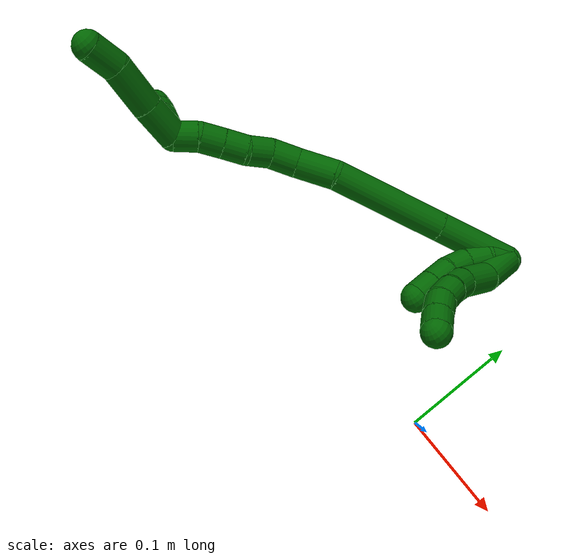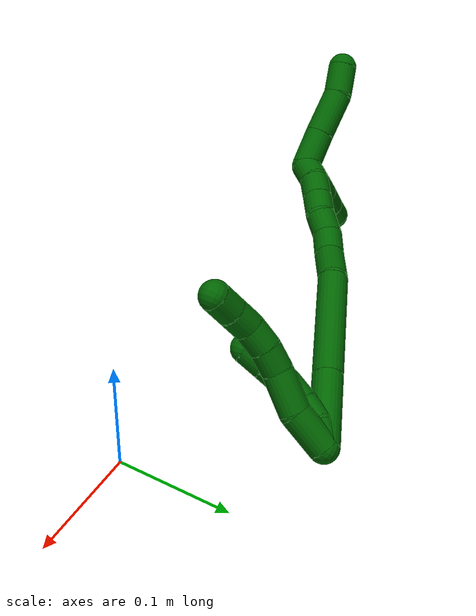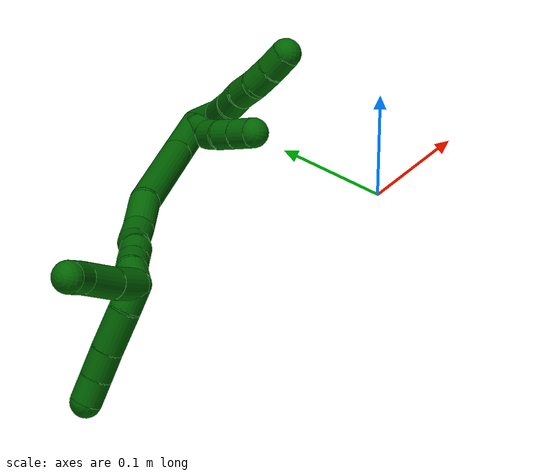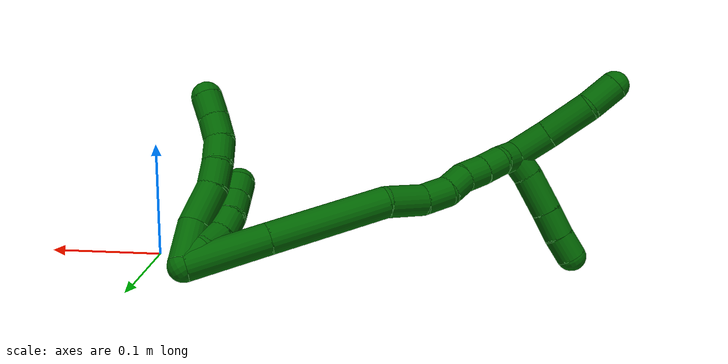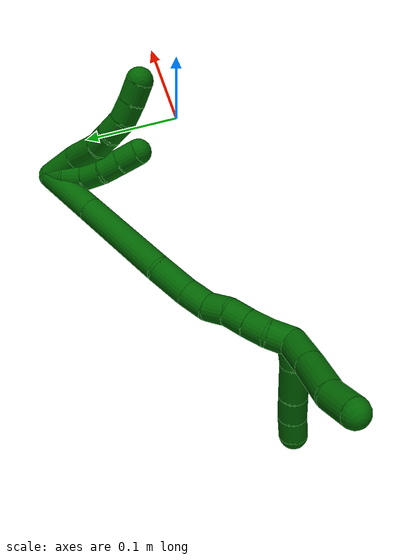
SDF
<sdf version="1.7">
 <world name="default">
  <model name="photoneo_s_sensor">
   <static>1</static>
   <pose>0 0 2 1.57079 1.57079 3.14159</pose>
   <link name="link">
    <inertial><mass>0.1</mass></inertial>
    <sensor name="sensor" type="depth">
     <update_rate>30</update_rate>
     <camera>
      <horizontal_fov>1.22</horizontal_fov>
      <image><width>1920</width><height>1200</height><format>B8G8R8</format></image>
      <clip><near>0.1</near><far>4</far></clip>
      <depth_camera><output>points</output></depth_camera>
     </camera>
     <plugin name="camera_plugin" filename="libgazebo_ros_depth_camera.so">
      <baseline>0.2</baseline>
      <alwaysOn>1</alwaysOn>
      <updateRate>0.0</updateRate>
      <cameraName>camera_ir</cameraName>
      <imageTopicName>/camera/color/image_raw</imageTopicName>
      <cameraInfoTopicName>/camera/color/camera_info</cameraInfoTopicName>
      <depthImageTopicName>/camera/depth/image_raw</depthImageTopicName>
      <depthImageCameraInfoTopicName>/camera/depth/camera_info</depthImageCameraInfoTopicName>
      <pointCloudTopicName>/camera/depth/points</pointCloudTopicName>
      <frameName>fr_optical</frameName>
      <pointCloudCutoff>0.1</pointCloudCutoff>
      <pointCloudCutoffMax>2.0</pointCloudCutoffMax>
      <distortionK1>0</distortionK1>
      <distortionK2>0</distortionK2>
      <distortionK3>0</distortionK3>
      <distortionT1>0</distortionT1>
      <distortionT2>0</distortionT2>
      <CxPrime>0</CxPrime>
      <Cx>0</Cx>
      <Cy>0</Cy>
      <focalLength>0</focalLength>
      <hackBaseline>0</hackBaseline>
     </plugin>
    </sensor>
   </link>
  </model>
  <model name="bin">
   <static>1</static>
   <link name="bottom">
    <collision name="collision-bottom">
     <pose>0 0 -0.01 0 -0 0</pose>
     <geometry><box><size>0.8 0.6 0.02</size></box></geometry>
     <surface>
      <friction><ode><mu>100</mu><mu2>100</mu2></ode></friction>
      <contact><collide_bitmask>65535</collide_bitmask></contact>
     </surface>
    </collision>
   </link>
   <link name="west_wall">
    <collision name="collision-west_wall">
     <pose>-0.41 0 0.1 0 -0 0</pose>
     <geometry><box><size>0.02 0.6 0.2</size></box></geometry>
     <surface>
      <friction><ode><mu>100</mu><mu2>100</mu2></ode></friction>
      <contact><collide_bitmask>65535</collide_bitmask></contact>
     </surface>
    </collision>
   </link>
   <link name="east_wall">
    <collision name="collision-east_wall">
     <pose>0.41 0 0.1 0 -0 0</pose>
     <geometry><box><size>0.02 0.6 0.2</size></box></geometry>
     <surface>
      <friction><ode><mu>100</mu><mu2>100</mu2></ode></friction>
      <contact><collide_bitmask>65535</collide_bitmask></contact>
     </surface>
    </collision>
   </link>
   <link name="south_wall">
    <collision name="collision-south_wall">
     <pose>0 -0.31 0.1 0 -0 0</pose>
     <geometry><box><size>0.8 0.02 0.2</size></box></geometry>
     <surface>
      <friction><ode><mu>100</mu><mu2>100</mu2></ode></friction>
      <contact><collide_bitmask>65535</collide_bitmask></contact>
     </surface>
    </collision>
   </link>
   <link name="north_wall">
    <collision name="collision-north_wall">
     <pose>0 0.31 0.1 0 -0 0</pose>
     <geometry><box><size>0.8 0.02 0.2</size></box></geometry>
     <surface>
      <friction><ode><mu>100</mu><mu2>100</mu2></ode></friction>
      <contact><collide_bitmask>65535</collide_bitmask></contact>
     </surface>
    </collision>
   </link>
  </model>
  <model name="6">
   <static>0</static>
   <link name="6">
    <collision name="collision-cylinder-e_1_2_8">
     <pose>0.007121 -0.014197 0.007047 1.11003 0.422234 0.264208</pose>
     <geometry><cylinder><radius>0.0125</radius><length>0.034752</length></cylinder></geometry>
     <surface>
      <friction><ode><mu>1.16</mu><mu2>1.16</mu2><slip1>0</slip1><slip2>0</slip2></ode></friction>
      <contact><ode><kp>1e+06</kp><kd>1</kd><max_vel>0</max_vel><min_depth>0.001</min_depth></ode></contact>
     </surface>
    </collision>
    <visual name="visual-cylinder-e_1_2_8">
     <pose>0.007121 -0.014197 0.007047 1.11003 0.422234 0.264208</pose>
     <geometry><cylinder><radius>0.0125</radius><length>0.034752</length></cylinder></geometry>
     <material><ambient>0 0.392157 0.003922 1</ambient></material>
    </visual>
    <collision name="collision-cylinder-e_2_8_9">
     <pose>0.020119 -0.039723 0.025184 0.796132 0.355042 0.150604</pose>
     <geometry><cylinder><radius>0.0125</radius><length>0.033815</length></cylinder></geometry>
     <surface>
      <friction><ode><mu>1.16</mu><mu2>1.16</mu2><slip1>0</slip1><slip2>0</slip2></ode></friction>
      <contact><ode><kp>1e+06</kp><kd>1</kd><max_vel>0</max_vel><min_depth>0.001</min_depth></ode></contact>
     </surface>
    </collision>
    <visual name="visual-cylinder-e_2_8_9">
     <pose>0.020119 -0.039723 0.025184 0.796132 0.355042 0.150604</pose>
     <geometry><cylinder><radius>0.0125</radius><length>0.033815</length></cylinder></geometry>
     <material><ambient>0 0.392157 0.003922 1</ambient></material>
    </visual>
    <collision name="collision-cylinder-e_3_9_10">
     <pose>0.031593 -0.057806 0.041641 0.899098 0.57546 0.283666</pose>
     <geometry><cylinder><radius>0.0125</radius><length>0.020568</length></cylinder></geometry>
     <surface>
      <friction><ode><mu>1.16</mu><mu2>1.16</mu2><slip1>0</slip1><slip2>0</slip2></ode></friction>
      <contact><ode><kp>1e+06</kp><kd>1</kd><max_vel>0</max_vel><min_depth>0.001</min_depth></ode></contact>
     </surface>
    </collision>
    <visual name="visual-cylinder-e_3_9_10">
     <pose>0.031593 -0.057806 0.041641 0.899098 0.57546 0.283666</pose>
     <geometry><cylinder><radius>0.0125</radius><length>0.020568</length></cylinder></geometry>
     <material><ambient>0 0.392157 0.003922 1</ambient></material>
    </visual>
    <collision name="collision-cylinder-e_4_10_11">
     <pose>0.042756 -0.072206 0.050899 1.10034 0.575593 0.359203</pose>
     <geometry><cylinder><radius>0.0125</radius><length>0.020452</length></cylinder></geometry>
     <surface>
      <friction><ode><mu>1.16</mu><mu2>1.16</mu2><slip1>0</slip1><slip2>0</slip2></ode></friction>
      <contact><ode><kp>1e+06</kp><kd>1</kd><max_vel>0</max_vel><min_depth>0.001</min_depth></ode></contact>
     </surface>
    </collision>
    <visual name="visual-cylinder-e_4_10_11">
     <pose>0.042756 -0.072206 0.050899 1.10034 0.575593 0.359203</pose>
     <geometry><cylinder><radius>0.0125</radius><length>0.020452</length></cylinder></geometry>
     <material><ambient>0 0.392157 0.003922 1</ambient></material>
    </visual>
    <collision name="collision-cylinder-e_5_11_12">
     <pose>0.05574 -0.086399 0.05628 1.3467 0.835111 0.6803</pose>
     <geometry><cylinder><radius>0.0125</radius><length>0.020012</length></cylinder></geometry>
     <surface>
      <friction><ode><mu>1.16</mu><mu2>1.16</mu2><slip1>0</slip1><slip2>0</slip2></ode></friction>
      <contact><ode><kp>1e+06</kp><kd>1</kd><max_vel>0</max_vel><min_depth>0.001</min_depth></ode></contact>
     </surface>
    </collision>
    <visual name="visual-cylinder-e_5_11_12">
     <pose>0.05574 -0.086399 0.05628 1.3467 0.835111 0.6803</pose>
     <geometry><cylinder><radius>0.0125</radius><length>0.020012</length></cylinder></geometry>
     <material><ambient>0 0.392157 0.003922 1</ambient></material>
    </visual>
    <collision name="collision-cylinder-e_6_12_6">
     <pose>0.071244 -0.09903 0.059062 1.36187 0.915127 0.759225</pose>
     <geometry><cylinder><radius>0.0125</radius><length>0.020402</length></cylinder></geometry>
     <surface>
      <friction><ode><mu>1.16</mu><mu2>1.16</mu2><slip1>0</slip1><slip2>0</slip2></ode></friction>
      <contact><ode><kp>1e+06</kp><kd>1</kd><max_vel>0</max_vel><min_depth>0.001</min_depth></ode></contact>
     </surface>
    </collision>
    <visual name="visual-cylinder-e_6_12_6">
     <pose>0.071244 -0.09903 0.059062 1.36187 0.915127 0.759225</pose>
     <geometry><cylinder><radius>0.0125</radius><length>0.020402</length></cylinder></geometry>
     <material><ambient>0 0.392157 0.003922 1</ambient></material>
    </visual>
    <collision name="collision-cylinder-e_1_2_13">
     <pose>-0.000605 -0.006443 0.007624 0.701597 -0.060577 -0.022173</pose>
     <geometry><cylinder><radius>0.0125</radius><length>0.02</length></cylinder></geometry>
     <surface>
      <friction><ode><mu>1.16</mu><mu2>1.16</mu2><slip1>0</slip1><slip2>0</slip2></ode></friction>
      <contact><ode><kp>1e+06</kp><kd>1</kd><max_vel>0</max_vel><min_depth>0.001</min_depth></ode></contact>
     </surface>
    </collision>
    <visual name="visual-cylinder-e_1_2_13">
     <pose>-0.000605 -0.006443 0.007624 0.701597 -0.060577 -0.022173</pose>
     <geometry><cylinder><radius>0.0125</radius><length>0.02</length></cylinder></geometry>
     <material><ambient>0 0.392157 0.003922 1</ambient></material>
    </visual>
    <collision name="collision-cylinder-e_2_13_14">
     <pose>-0.00224 -0.021259 0.020616 1.00078 -0.103054 -0.056386</pose>
     <geometry><cylinder><radius>0.0125</radius><length>0.02</length></cylinder></geometry>
     <surface>
      <friction><ode><mu>1.16</mu><mu2>1.16</mu2><slip1>0</slip1><slip2>0</slip2></ode></friction>
      <contact><ode><kp>1e+06</kp><kd>1</kd><max_vel>0</max_vel><min_depth>0.001</min_depth></ode></contact>
     </surface>
    </collision>
    <visual name="visual-cylinder-e_2_13_14">
     <pose>-0.00224 -0.021259 0.020616 1.00078 -0.103054 -0.056386</pose>
     <geometry><cylinder><radius>0.0125</radius><length>0.02</length></cylinder></geometry>
     <material><ambient>0 0.392157 0.003922 1</ambient></material>
    </visual>
    <collision name="collision-cylinder-e_3_14_15">
     <pose>-0.001636 -0.038369 0.030569 1.08745 0.163975 0.099265</pose>
     <geometry><cylinder><radius>0.0125</radius><length>0.02</length></cylinder></geometry>
     <surface>
      <friction><ode><mu>1.16</mu><mu2>1.16</mu2><slip1>0</slip1><slip2>0</slip2></ode></friction>
      <contact><ode><kp>1e+06</kp><kd>1</kd><max_vel>0</max_vel><min_depth>0.001</min_depth></ode></contact>
     </surface>
    </collision>
    <visual name="visual-cylinder-e_3_14_15">
     <pose>-0.001636 -0.038369 0.030569 1.08745 0.163975 0.099265</pose>
     <geometry><cylinder><radius>0.0125</radius><length>0.02</length></cylinder></geometry>
     <material><ambient>0 0.392157 0.003922 1</ambient></material>
    </visual>
    <collision name="collision-cylinder-e_4_15_16">
     <pose>0.002418 -0.056368 0.03804 1.2688 0.244622 0.180423</pose>
     <geometry><cylinder><radius>0.0125</radius><length>0.02</length></cylinder></geometry>
     <surface>
      <friction><ode><mu>1.16</mu><mu2>1.16</mu2><slip1>0</slip1><slip2>0</slip2></ode></friction>
      <contact><ode><kp>1e+06</kp><kd>1</kd><max_vel>0</max_vel><min_depth>0.001</min_depth></ode></contact>
     </surface>
    </collision>
    <visual name="visual-cylinder-e_4_15_16">
     <pose>0.002418 -0.056368 0.03804 1.2688 0.244622 0.180423</pose>
     <geometry><cylinder><radius>0.0125</radius><length>0.02</length></cylinder></geometry>
     <material><ambient>0 0.392157 0.003922 1</ambient></material>
    </visual>
    <collision name="collision-cylinder-e_5_16_5">
     <pose>0.007354 -0.074903 0.043704 1.27965 0.25409 0.189566</pose>
     <geometry><cylinder><radius>0.0125</radius><length>0.02</length></cylinder></geometry>
     <surface>
      <friction><ode><mu>1.16</mu><mu2>1.16</mu2><slip1>0</slip1><slip2>0</slip2></ode></friction>
      <contact><ode><kp>1e+06</kp><kd>1</kd><max_vel>0</max_vel><min_depth>0.001</min_depth></ode></contact>
     </surface>
    </collision>
    <visual name="visual-cylinder-e_5_16_5">
     <pose>0.007354 -0.074903 0.043704 1.27965 0.25409 0.189566</pose>
     <geometry><cylinder><radius>0.0125</radius><length>0.02</length></cylinder></geometry>
     <material><ambient>0 0.392157 0.003922 1</ambient></material>
    </visual>
    <collision name="collision-cylinder-e_1_2_17">
     <pose>-0.011535 -0.011513 0.028244 0.387065 -0.361558 -0.071612</pose>
     <geometry><cylinder><radius>0.0125</radius><length>0.065218</length></cylinder></geometry>
     <surface>
      <friction><ode><mu>1.16</mu><mu2>1.16</mu2><slip1>0</slip1><slip2>0</slip2></ode></friction>
      <contact><ode><kp>1e+06</kp><kd>1</kd><max_vel>0</max_vel><min_depth>0.001</min_depth></ode></contact>
     </surface>
    </collision>
    <visual name="visual-cylinder-e_1_2_17">
     <pose>-0.011535 -0.011513 0.028244 0.387065 -0.361558 -0.071612</pose>
     <geometry><cylinder><radius>0.0125</radius><length>0.065218</length></cylinder></geometry>
     <material><ambient>0 0.392157 0.003922 1</ambient></material>
    </visual>
    <collision name="collision-cylinder-e_2_17_18">
     <pose>-0.040387 -0.040174 0.098567 0.386962 -0.364127 -0.072112</pose>
     <geometry><cylinder><radius>0.0125</radius><length>0.097253</length></cylinder></geometry>
     <surface>
      <friction><ode><mu>1.16</mu><mu2>1.16</mu2><slip1>0</slip1><slip2>0</slip2></ode></friction>
      <contact><ode><kp>1e+06</kp><kd>1</kd><max_vel>0</max_vel><min_depth>0.001</min_depth></ode></contact>
     </surface>
    </collision>
    <visual name="visual-cylinder-e_2_17_18">
     <pose>-0.040387 -0.040174 0.098567 0.386962 -0.364127 -0.072112</pose>
     <geometry><cylinder><radius>0.0125</radius><length>0.097253</length></cylinder></geometry>
     <material><ambient>0 0.392157 0.003922 1</ambient></material>
    </visual>
    <collision name="collision-cylinder-e_3_18_19">
     <pose>-0.067384 -0.06465 0.152206 0.565025 -0.615524 -0.184015</pose>
     <geometry><cylinder><radius>0.0125</radius><length>0.033527</length></cylinder></geometry>
     <surface>
      <friction><ode><mu>1.16</mu><mu2>1.16</mu2><slip1>0</slip1><slip2>0</slip2></ode></friction>
      <contact><ode><kp>1e+06</kp><kd>1</kd><max_vel>0</max_vel><min_depth>0.001</min_depth></ode></contact>
     </surface>
    </collision>
    <visual name="visual-cylinder-e_3_18_19">
     <pose>-0.067384 -0.06465 0.152206 0.565025 -0.615524 -0.184015</pose>
     <geometry><cylinder><radius>0.0125</radius><length>0.033527</length></cylinder></geometry>
     <material><ambient>0 0.392157 0.003922 1</ambient></material>
    </visual>
    <collision name="collision-cylinder-e_4_19_20">
     <pose>-0.081318 -0.077376 0.173396 0.510821 -0.367863 -0.097076</pose>
     <geometry><cylinder><radius>0.0125</radius><length>0.023664</length></cylinder></geometry>
     <surface>
      <friction><ode><mu>1.16</mu><mu2>1.16</mu2><slip1>0</slip1><slip2>0</slip2></ode></friction>
      <contact><ode><kp>1e+06</kp><kd>1</kd><max_vel>0</max_vel><min_depth>0.001</min_depth></ode></contact>
     </surface>
    </collision>
    <visual name="visual-cylinder-e_4_19_20">
     <pose>-0.081318 -0.077376 0.173396 0.510821 -0.367863 -0.097076</pose>
     <geometry><cylinder><radius>0.0125</radius><length>0.023664</length></cylinder></geometry>
     <material><ambient>0 0.392157 0.003922 1</ambient></material>
    </visual>
    <collision name="collision-cylinder-e_5_20_21">
     <pose>-0.086481 -0.089421 0.190633 0.71829 -0.089673 -0.033685</pose>
     <geometry><cylinder><radius>0.0125</radius><length>0.020284</length></cylinder></geometry>
     <surface>
      <friction><ode><mu>1.16</mu><mu2>1.16</mu2><slip1>0</slip1><slip2>0</slip2></ode></friction>
      <contact><ode><kp>1e+06</kp><kd>1</kd><max_vel>0</max_vel><min_depth>0.001</min_depth></ode></contact>
     </surface>
    </collision>
    <visual name="visual-cylinder-e_5_20_21">
     <pose>-0.086481 -0.089421 0.190633 0.71829 -0.089673 -0.033685</pose>
     <geometry><cylinder><radius>0.0125</radius><length>0.020284</length></cylinder></geometry>
     <material><ambient>0 0.392157 0.003922 1</ambient></material>
    </visual>
    <collision name="collision-cylinder-e_6_21_22">
     <pose>-0.090663 -0.101176 0.206204 0.570161 -0.333051 -0.098438</pose>
     <geometry><cylinder><radius>0.0125</radius><length>0.020025</length></cylinder></geometry>
     <surface>
      <friction><ode><mu>1.16</mu><mu2>1.16</mu2><slip1>0</slip1><slip2>0</slip2></ode></friction>
      <contact><ode><kp>1e+06</kp><kd>1</kd><max_vel>0</max_vel><min_depth>0.001</min_depth></ode></contact>
     </surface>
    </collision>
    <visual name="visual-cylinder-e_6_21_22">
     <pose>-0.090663 -0.101176 0.206204 0.570161 -0.333051 -0.098438</pose>
     <geometry><cylinder><radius>0.0125</radius><length>0.020025</length></cylinder></geometry>
     <material><ambient>0 0.392157 0.003922 1</ambient></material>
    </visual>
    <collision name="collision-cylinder-e_7_22_23">
     <pose>-0.096421 -0.111597 0.222274 0.580357 -0.250972 -0.075302</pose>
     <geometry><cylinder><radius>0.0125</radius><length>0.02001</length></cylinder></geometry>
     <surface>
      <friction><ode><mu>1.16</mu><mu2>1.16</mu2><slip1>0</slip1><slip2>0</slip2></ode></friction>
      <contact><ode><kp>1e+06</kp><kd>1</kd><max_vel>0</max_vel><min_depth>0.001</min_depth></ode></contact>
     </surface>
    </collision>
    <visual name="visual-cylinder-e_7_22_23">
     <pose>-0.096421 -0.111597 0.222274 0.580357 -0.250972 -0.075302</pose>
     <geometry><cylinder><radius>0.0125</radius><length>0.02001</length></cylinder></geometry>
     <material><ambient>0 0.392157 0.003922 1</ambient></material>
    </visual>
    <collision name="collision-cylinder-e_8_23_1">
     <pose>-0.102705 -0.123952 0.236395 0.863679 -0.389349 -0.181235</pose>
     <geometry><cylinder><radius>0.0125</radius><length>0.020019</length></cylinder></geometry>
     <surface>
      <friction><ode><mu>1.16</mu><mu2>1.16</mu2><slip1>0</slip1><slip2>0</slip2></ode></friction>
      <contact><ode><kp>1e+06</kp><kd>1</kd><max_vel>0</max_vel><min_depth>0.001</min_depth></ode></contact>
     </surface>
    </collision>
    <visual name="visual-cylinder-e_8_23_1">
     <pose>-0.102705 -0.123952 0.236395 0.863679 -0.389349 -0.181235</pose>
     <geometry><cylinder><radius>0.0125</radius><length>0.020019</length></cylinder></geometry>
     <material><ambient>0 0.392157 0.003922 1</ambient></material>
    </visual>
    <collision name="collision-cylinder-e_1_1_24">
     <pose>-0.11661 -0.129351 0.243152 -1.14635 -1.39445 0.991209</pose>
     <geometry><cylinder><radius>0.0125</radius><length>0.020529</length></cylinder></geometry>
     <surface>
      <friction><ode><mu>1.16</mu><mu2>1.16</mu2><slip1>0</slip1><slip2>0</slip2></ode></friction>
      <contact><ode><kp>1e+06</kp><kd>1</kd><max_vel>0</max_vel><min_depth>0.001</min_depth></ode></contact>
     </surface>
    </collision>
    <visual name="visual-cylinder-e_1_1_24">
     <pose>-0.11661 -0.129351 0.243152 -1.14635 -1.39445 0.991209</pose>
     <geometry><cylinder><radius>0.0125</radius><length>0.020529</length></cylinder></geometry>
     <material><ambient>0 0.392157 0.003922 1</ambient></material>
    </visual>
    <collision name="collision-cylinder-e_2_24_25">
     <pose>-0.143464 -0.123453 0.242881 -1.80437 -1.31524 1.54814</pose>
     <geometry><cylinder><radius>0.0125</radius><length>0.034622</length></cylinder></geometry>
     <surface>
      <friction><ode><mu>1.16</mu><mu2>1.16</mu2><slip1>0</slip1><slip2>0</slip2></ode></friction>
      <contact><ode><kp>1e+06</kp><kd>1</kd><max_vel>0</max_vel><min_depth>0.001</min_depth></ode></contact>
     </surface>
    </collision>
    <visual name="visual-cylinder-e_2_24_25">
     <pose>-0.143464 -0.123453 0.242881 -1.80437 -1.31524 1.54814</pose>
     <geometry><cylinder><radius>0.0125</radius><length>0.034622</length></cylinder></geometry>
     <material><ambient>0 0.392157 0.003922 1</ambient></material>
    </visual>
    <collision name="collision-cylinder-e_3_25_26">
     <pose>-0.171678 -0.116489 0.240895 -1.91603 -1.32502 1.67462</pose>
     <geometry><cylinder><radius>0.0125</radius><length>0.023642</length></cylinder></geometry>
     <surface>
      <friction><ode><mu>1.16</mu><mu2>1.16</mu2><slip1>0</slip1><slip2>0</slip2></ode></friction>
      <contact><ode><kp>1e+06</kp><kd>1</kd><max_vel>0</max_vel><min_depth>0.001</min_depth></ode></contact>
     </surface>
    </collision>
    <visual name="visual-cylinder-e_3_25_26">
     <pose>-0.171678 -0.116489 0.240895 -1.91603 -1.32502 1.67462</pose>
     <geometry><cylinder><radius>0.0125</radius><length>0.023642</length></cylinder></geometry>
     <material><ambient>0 0.392157 0.003922 1</ambient></material>
    </visual>
    <collision name="collision-cylinder-e_4_26_4">
     <pose>-0.193556 -0.111776 0.239871 -1.5958 -1.38038 1.40499</pose>
     <geometry><cylinder><radius>0.0125</radius><length>0.021207</length></cylinder></geometry>
     <surface>
      <friction><ode><mu>1.16</mu><mu2>1.16</mu2><slip1>0</slip1><slip2>0</slip2></ode></friction>
      <contact><ode><kp>1e+06</kp><kd>1</kd><max_vel>0</max_vel><min_depth>0.001</min_depth></ode></contact>
     </surface>
    </collision>
    <visual name="visual-cylinder-e_4_26_4">
     <pose>-0.193556 -0.111776 0.239871 -1.5958 -1.38038 1.40499</pose>
     <geometry><cylinder><radius>0.0125</radius><length>0.021207</length></cylinder></geometry>
     <material><ambient>0 0.392157 0.003922 1</ambient></material>
    </visual>
    <collision name="collision-cylinder-e_1_1_27">
     <pose>-0.106093 -0.131383 0.258834 0.023847 0.025067 0.000299</pose>
     <geometry><cylinder><radius>0.0125</radius><length>0.032867</length></cylinder></geometry>
     <surface>
      <friction><ode><mu>1.16</mu><mu2>1.16</mu2><slip1>0</slip1><slip2>0</slip2></ode></friction>
      <contact><ode><kp>1e+06</kp><kd>1</kd><max_vel>0</max_vel><min_depth>0.001</min_depth></ode></contact>
     </surface>
    </collision>
    <visual name="visual-cylinder-e_1_1_27">
     <pose>-0.106093 -0.131383 0.258834 0.023847 0.025067 0.000299</pose>
     <geometry><cylinder><radius>0.0125</radius><length>0.032867</length></cylinder></geometry>
     <material><ambient>0 0.392157 0.003922 1</ambient></material>
    </visual>
    <collision name="collision-cylinder-e_2_27_28">
     <pose>-0.104065 -0.13122 0.295287 -0.027677 0.080452 -0.001114</pose>
     <geometry><cylinder><radius>0.0125</radius><length>0.040205</length></cylinder></geometry>
     <surface>
      <friction><ode><mu>1.16</mu><mu2>1.16</mu2><slip1>0</slip1><slip2>0</slip2></ode></friction>
      <contact><ode><kp>1e+06</kp><kd>1</kd><max_vel>0</max_vel><min_depth>0.001</min_depth></ode></contact>
     </surface>
    </collision>
    <visual name="visual-cylinder-e_2_27_28">
     <pose>-0.104065 -0.13122 0.295287 -0.027677 0.080452 -0.001114</pose>
     <geometry><cylinder><radius>0.0125</radius><length>0.040205</length></cylinder></geometry>
     <material><ambient>0 0.392157 0.003922 1</ambient></material>
    </visual>
    <collision name="collision-cylinder-e_3_28_3">
     <pose>-0.101499 -0.133785 0.32838 0.234346 0.070666 0.008322</pose>
     <geometry><cylinder><radius>0.0125</radius><length>0.026929</length></cylinder></geometry>
     <surface>
      <friction><ode><mu>1.16</mu><mu2>1.16</mu2><slip1>0</slip1><slip2>0</slip2></ode></friction>
      <contact><ode><kp>1e+06</kp><kd>1</kd><max_vel>0</max_vel><min_depth>0.001</min_depth></ode></contact>
     </surface>
    </collision>
    <visual name="visual-cylinder-e_3_28_3">
     <pose>-0.101499 -0.133785 0.32838 0.234346 0.070666 0.008322</pose>
     <geometry><cylinder><radius>0.0125</radius><length>0.026929</length></cylinder></geometry>
     <material><ambient>0 0.392157 0.003922 1</ambient></material>
    </visual>
    <collision name="collision-sphere-3">
     <pose>-0.100548 -0.136903 0.341444 0 -0 0</pose>
     <geometry><sphere><radius>0.0125</radius></sphere></geometry>
     <surface>
      <friction><ode><mu>1.16</mu><mu2>1.16</mu2><slip1>0</slip1><slip2>0</slip2></ode></friction>
      <contact><ode><kp>1e+06</kp><kd>1</kd><max_vel>0</max_vel><min_depth>0.001</min_depth></ode></contact>
     </surface>
    </collision>
    <visual name="visual-sphere-3">
     <pose>-0.100548 -0.136903 0.341444 0 -0 0</pose>
     <geometry><sphere><radius>0.0125</radius></sphere></geometry>
     <material><ambient>0 0.392157 0.003922 1</ambient></material>
    </visual>
    <collision name="collision-sphere-28">
     <pose>-0.10245 -0.130666 0.315317 0 -0 0</pose>
     <geometry><sphere><radius>0.0125</radius></sphere></geometry>
     <surface>
      <friction><ode><mu>1.16</mu><mu2>1.16</mu2><slip1>0</slip1><slip2>0</slip2></ode></friction>
      <contact><ode><kp>1e+06</kp><kd>1</kd><max_vel>0</max_vel><min_depth>0.001</min_depth></ode></contact>
     </surface>
    </collision>
    <visual name="visual-sphere-28">
     <pose>-0.10245 -0.130666 0.315317 0 -0 0</pose>
     <geometry><sphere><radius>0.0125</radius></sphere></geometry>
     <material><ambient>0 0.392157 0.003922 1</ambient></material>
    </visual>
    <collision name="collision-sphere-27">
     <pose>-0.105681 -0.131775 0.275258 0 -0 0</pose>
     <geometry><sphere><radius>0.0125</radius></sphere></geometry>
     <surface>
      <friction><ode><mu>1.16</mu><mu2>1.16</mu2><slip1>0</slip1><slip2>0</slip2></ode></friction>
      <contact><ode><kp>1e+06</kp><kd>1</kd><max_vel>0</max_vel><min_depth>0.001</min_depth></ode></contact>
     </surface>
    </collision>
    <visual name="visual-sphere-27">
     <pose>-0.105681 -0.131775 0.275258 0 -0 0</pose>
     <geometry><sphere><radius>0.0125</radius></sphere></geometry>
     <material><ambient>0 0.392157 0.003922 1</ambient></material>
    </visual>
    <collision name="collision-sphere-4">
     <pose>-0.203968 -0.10977 0.239821 0 -0 0</pose>
     <geometry><sphere><radius>0.0125</radius></sphere></geometry>
     <surface>
      <friction><ode><mu>1.16</mu><mu2>1.16</mu2><slip1>0</slip1><slip2>0</slip2></ode></friction>
      <contact><ode><kp>1e+06</kp><kd>1</kd><max_vel>0</max_vel><min_depth>0.001</min_depth></ode></contact>
     </surface>
    </collision>
    <visual name="visual-sphere-4">
     <pose>-0.203968 -0.10977 0.239821 0 -0 0</pose>
     <geometry><sphere><radius>0.0125</radius></sphere></geometry>
     <material><ambient>0 0.392157 0.003922 1</ambient></material>
    </visual>
    <collision name="collision-sphere-26">
     <pose>-0.183144 -0.113783 0.239921 0 -0 0</pose>
     <geometry><sphere><radius>0.0125</radius></sphere></geometry>
     <surface>
      <friction><ode><mu>1.16</mu><mu2>1.16</mu2><slip1>0</slip1><slip2>0</slip2></ode></friction>
      <contact><ode><kp>1e+06</kp><kd>1</kd><max_vel>0</max_vel><min_depth>0.001</min_depth></ode></contact>
     </surface>
    </collision>
    <visual name="visual-sphere-26">
     <pose>-0.183144 -0.113783 0.239921 0 -0 0</pose>
     <geometry><sphere><radius>0.0125</radius></sphere></geometry>
     <material><ambient>0 0.392157 0.003922 1</ambient></material>
    </visual>
    <collision name="collision-sphere-25">
     <pose>-0.160213 -0.119195 0.241868 0 -0 0</pose>
     <geometry><sphere><radius>0.0125</radius></sphere></geometry>
     <surface>
      <friction><ode><mu>1.16</mu><mu2>1.16</mu2><slip1>0</slip1><slip2>0</slip2></ode></friction>
      <contact><ode><kp>1e+06</kp><kd>1</kd><max_vel>0</max_vel><min_depth>0.001</min_depth></ode></contact>
     </surface>
    </collision>
    <visual name="visual-sphere-25">
     <pose>-0.160213 -0.119195 0.241868 0 -0 0</pose>
     <geometry><sphere><radius>0.0125</radius></sphere></geometry>
     <material><ambient>0 0.392157 0.003922 1</ambient></material>
    </visual>
    <collision name="collision-sphere-24">
     <pose>-0.126715 -0.12771 0.243894 0 -0 0</pose>
     <geometry><sphere><radius>0.0125</radius></sphere></geometry>
     <surface>
      <friction><ode><mu>1.16</mu><mu2>1.16</mu2><slip1>0</slip1><slip2>0</slip2></ode></friction>
      <contact><ode><kp>1e+06</kp><kd>1</kd><max_vel>0</max_vel><min_depth>0.001</min_depth></ode></contact>
     </surface>
    </collision>
    <visual name="visual-sphere-24">
     <pose>-0.126715 -0.12771 0.243894 0 -0 0</pose>
     <geometry><sphere><radius>0.0125</radius></sphere></geometry>
     <material><ambient>0 0.392157 0.003922 1</ambient></material>
    </visual>
    <collision name="collision-sphere-1">
     <pose>-0.106505 -0.130992 0.242411 0 -0 0</pose>
     <geometry><sphere><radius>0.0125</radius></sphere></geometry>
     <surface>
      <friction><ode><mu>1.16</mu><mu2>1.16</mu2><slip1>0</slip1><slip2>0</slip2></ode></friction>
      <contact><ode><kp>1e+06</kp><kd>1</kd><max_vel>0</max_vel><min_depth>0.001</min_depth></ode></contact>
     </surface>
    </collision>
    <visual name="visual-sphere-1">
     <pose>-0.106505 -0.130992 0.242411 0 -0 0</pose>
     <geometry><sphere><radius>0.0125</radius></sphere></geometry>
     <material><ambient>0 0.392157 0.003922 1</ambient></material>
    </visual>
    <collision name="collision-sphere-23">
     <pose>-0.098906 -0.116911 0.230379 0 -0 0</pose>
     <geometry><sphere><radius>0.0125</radius></sphere></geometry>
     <surface>
      <friction><ode><mu>1.16</mu><mu2>1.16</mu2><slip1>0</slip1><slip2>0</slip2></ode></friction>
      <contact><ode><kp>1e+06</kp><kd>1</kd><max_vel>0</max_vel><min_depth>0.001</min_depth></ode></contact>
     </surface>
    </collision>
    <visual name="visual-sphere-23">
     <pose>-0.098906 -0.116911 0.230379 0 -0 0</pose>
     <geometry><sphere><radius>0.0125</radius></sphere></geometry>
     <material><ambient>0 0.392157 0.003922 1</ambient></material>
    </visual>
    <collision name="collision-sphere-22">
     <pose>-0.093936 -0.106283 0.21417 0 -0 0</pose>
     <geometry><sphere><radius>0.0125</radius></sphere></geometry>
     <surface>
      <friction><ode><mu>1.16</mu><mu2>1.16</mu2><slip1>0</slip1><slip2>0</slip2></ode></friction>
      <contact><ode><kp>1e+06</kp><kd>1</kd><max_vel>0</max_vel><min_depth>0.001</min_depth></ode></contact>
     </surface>
    </collision>
    <visual name="visual-sphere-22">
     <pose>-0.093936 -0.106283 0.21417 0 -0 0</pose>
     <geometry><sphere><radius>0.0125</radius></sphere></geometry>
     <material><ambient>0 0.392157 0.003922 1</ambient></material>
    </visual>
    <collision name="collision-sphere-21">
     <pose>-0.08739 -0.096069 0.198239 0 -0 0</pose>
     <geometry><sphere><radius>0.0125</radius></sphere></geometry>
     <surface>
      <friction><ode><mu>1.16</mu><mu2>1.16</mu2><slip1>0</slip1><slip2>0</slip2></ode></friction>
      <contact><ode><kp>1e+06</kp><kd>1</kd><max_vel>0</max_vel><min_depth>0.001</min_depth></ode></contact>
     </surface>
    </collision>
    <visual name="visual-sphere-21">
     <pose>-0.08739 -0.096069 0.198239 0 -0 0</pose>
     <geometry><sphere><radius>0.0125</radius></sphere></geometry>
     <material><ambient>0 0.392157 0.003922 1</ambient></material>
    </visual>
    <collision name="collision-sphere-12">
     <pose>0.063158 -0.092946 0.057772 0 -0 0</pose>
     <geometry><sphere><radius>0.0125</radius></sphere></geometry>
     <surface>
      <friction><ode><mu>1.16</mu><mu2>1.16</mu2><slip1>0</slip1><slip2>0</slip2></ode></friction>
      <contact><ode><kp>1e+06</kp><kd>1</kd><max_vel>0</max_vel><min_depth>0.001</min_depth></ode></contact>
     </surface>
    </collision>
    <visual name="visual-sphere-12">
     <pose>0.063158 -0.092946 0.057772 0 -0 0</pose>
     <geometry><sphere><radius>0.0125</radius></sphere></geometry>
     <material><ambient>0 0.392157 0.003922 1</ambient></material>
    </visual>
    <collision name="collision-sphere-11">
     <pose>0.048322 -0.079852 0.054788 0 -0 0</pose>
     <geometry><sphere><radius>0.0125</radius></sphere></geometry>
     <surface>
      <friction><ode><mu>1.16</mu><mu2>1.16</mu2><slip1>0</slip1><slip2>0</slip2></ode></friction>
      <contact><ode><kp>1e+06</kp><kd>1</kd><max_vel>0</max_vel><min_depth>0.001</min_depth></ode></contact>
     </surface>
    </collision>
    <visual name="visual-sphere-11">
     <pose>0.048322 -0.079852 0.054788 0 -0 0</pose>
     <geometry><sphere><radius>0.0125</radius></sphere></geometry>
     <material><ambient>0 0.392157 0.003922 1</ambient></material>
    </visual>
    <collision name="collision-sphere-10">
     <pose>0.03719 -0.064559 0.047011 0 -0 0</pose>
     <geometry><sphere><radius>0.0125</radius></sphere></geometry>
     <surface>
      <friction><ode><mu>1.16</mu><mu2>1.16</mu2><slip1>0</slip1><slip2>0</slip2></ode></friction>
      <contact><ode><kp>1e+06</kp><kd>1</kd><max_vel>0</max_vel><min_depth>0.001</min_depth></ode></contact>
     </surface>
    </collision>
    <visual name="visual-sphere-10">
     <pose>0.03719 -0.064559 0.047011 0 -0 0</pose>
     <geometry><sphere><radius>0.0125</radius></sphere></geometry>
     <material><ambient>0 0.392157 0.003922 1</ambient></material>
    </visual>
    <collision name="collision-sphere-9">
     <pose>0.025996 -0.051052 0.036272 0 -0 0</pose>
     <geometry><sphere><radius>0.0125</radius></sphere></geometry>
     <surface>
      <friction><ode><mu>1.16</mu><mu2>1.16</mu2><slip1>0</slip1><slip2>0</slip2></ode></friction>
      <contact><ode><kp>1e+06</kp><kd>1</kd><max_vel>0</max_vel><min_depth>0.001</min_depth></ode></contact>
     </surface>
    </collision>
    <visual name="visual-sphere-9">
     <pose>0.025996 -0.051052 0.036272 0 -0 0</pose>
     <geometry><sphere><radius>0.0125</radius></sphere></geometry>
     <material><ambient>0 0.392157 0.003922 1</ambient></material>
    </visual>
    <collision name="collision-sphere-2">
     <geometry><sphere><radius>0.0125</radius></sphere></geometry>
     <surface>
      <friction><ode><mu>1.16</mu><mu2>1.16</mu2><slip1>0</slip1><slip2>0</slip2></ode></friction>
      <contact><ode><kp>1e+06</kp><kd>1</kd><max_vel>0</max_vel><min_depth>0.001</min_depth></ode></contact>
     </surface>
    </collision>
    <visual name="visual-sphere-2">
     <geometry><sphere><radius>0.0125</radius></sphere></geometry>
     <material><ambient>0 0.392157 0.003922 1</ambient></material>
    </visual>
    <collision name="collision-sphere-19">
     <pose>-0.077063 -0.071978 0.163765 0 -0 0</pose>
     <geometry><sphere><radius>0.0125</radius></sphere></geometry>
     <surface>
      <friction><ode><mu>1.16</mu><mu2>1.16</mu2><slip1>0</slip1><slip2>0</slip2></ode></friction>
      <contact><ode><kp>1e+06</kp><kd>1</kd><max_vel>0</max_vel><min_depth>0.001</min_depth></ode></contact>
     </surface>
    </collision>
    <visual name="visual-sphere-19">
     <pose>-0.077063 -0.071978 0.163765 0 -0 0</pose>
     <geometry><sphere><radius>0.0125</radius></sphere></geometry>
     <material><ambient>0 0.392157 0.003922 1</ambient></material>
    </visual>
    <collision name="collision-sphere-8">
     <pose>0.014241 -0.028394 0.014095 0 -0 0</pose>
     <geometry><sphere><radius>0.0125</radius></sphere></geometry>
     <surface>
      <friction><ode><mu>1.16</mu><mu2>1.16</mu2><slip1>0</slip1><slip2>0</slip2></ode></friction>
      <contact><ode><kp>1e+06</kp><kd>1</kd><max_vel>0</max_vel><min_depth>0.001</min_depth></ode></contact>
     </surface>
    </collision>
    <visual name="visual-sphere-8">
     <pose>0.014241 -0.028394 0.014095 0 -0 0</pose>
     <geometry><sphere><radius>0.0125</radius></sphere></geometry>
     <material><ambient>0 0.392157 0.003922 1</ambient></material>
    </visual>
    <collision name="collision-sphere-6">
     <pose>0.07933 -0.105114 0.060352 0 -0 0</pose>
     <geometry><sphere><radius>0.0125</radius></sphere></geometry>
     <surface>
      <friction><ode><mu>1.16</mu><mu2>1.16</mu2><slip1>0</slip1><slip2>0</slip2></ode></friction>
      <contact><ode><kp>1e+06</kp><kd>1</kd><max_vel>0</max_vel><min_depth>0.001</min_depth></ode></contact>
     </surface>
    </collision>
    <visual name="visual-sphere-6">
     <pose>0.07933 -0.105114 0.060352 0 -0 0</pose>
     <geometry><sphere><radius>0.0125</radius></sphere></geometry>
     <material><ambient>0 0.392157 0.003922 1</ambient></material>
    </visual>
    <collision name="collision-sphere-13">
     <pose>-0.001211 -0.012885 0.015248 0 -0 0</pose>
     <geometry><sphere><radius>0.0125</radius></sphere></geometry>
     <surface>
      <friction><ode><mu>1.16</mu><mu2>1.16</mu2><slip1>0</slip1><slip2>0</slip2></ode></friction>
      <contact><ode><kp>1e+06</kp><kd>1</kd><max_vel>0</max_vel><min_depth>0.001</min_depth></ode></contact>
     </surface>
    </collision>
    <visual name="visual-sphere-13">
     <pose>-0.001211 -0.012885 0.015248 0 -0 0</pose>
     <geometry><sphere><radius>0.0125</radius></sphere></geometry>
     <material><ambient>0 0.392157 0.003922 1</ambient></material>
    </visual>
    <collision name="collision-sphere-14">
     <pose>-0.003268 -0.029634 0.025984 0 -0 0</pose>
     <geometry><sphere><radius>0.0125</radius></sphere></geometry>
     <surface>
      <friction><ode><mu>1.16</mu><mu2>1.16</mu2><slip1>0</slip1><slip2>0</slip2></ode></friction>
      <contact><ode><kp>1e+06</kp><kd>1</kd><max_vel>0</max_vel><min_depth>0.001</min_depth></ode></contact>
     </surface>
    </collision>
    <visual name="visual-sphere-14">
     <pose>-0.003268 -0.029634 0.025984 0 -0 0</pose>
     <geometry><sphere><radius>0.0125</radius></sphere></geometry>
     <material><ambient>0 0.392157 0.003922 1</ambient></material>
    </visual>
    <collision name="collision-sphere-15">
     <pose>-3e-06 -0.047105 0.035154 0 -0 0</pose>
     <geometry><sphere><radius>0.0125</radius></sphere></geometry>
     <surface>
      <friction><ode><mu>1.16</mu><mu2>1.16</mu2><slip1>0</slip1><slip2>0</slip2></ode></friction>
      <contact><ode><kp>1e+06</kp><kd>1</kd><max_vel>0</max_vel><min_depth>0.001</min_depth></ode></contact>
     </surface>
    </collision>
    <visual name="visual-sphere-15">
     <pose>-3e-06 -0.047105 0.035154 0 -0 0</pose>
     <geometry><sphere><radius>0.0125</radius></sphere></geometry>
     <material><ambient>0 0.392157 0.003922 1</ambient></material>
    </visual>
    <collision name="collision-sphere-16">
     <pose>0.00484 -0.065631 0.040925 0 -0 0</pose>
     <geometry><sphere><radius>0.0125</radius></sphere></geometry>
     <surface>
      <friction><ode><mu>1.16</mu><mu2>1.16</mu2><slip1>0</slip1><slip2>0</slip2></ode></friction>
      <contact><ode><kp>1e+06</kp><kd>1</kd><max_vel>0</max_vel><min_depth>0.001</min_depth></ode></contact>
     </surface>
    </collision>
    <visual name="visual-sphere-16">
     <pose>0.00484 -0.065631 0.040925 0 -0 0</pose>
     <geometry><sphere><radius>0.0125</radius></sphere></geometry>
     <material><ambient>0 0.392157 0.003922 1</ambient></material>
    </visual>
    <collision name="collision-sphere-5">
     <pose>0.009868 -0.084175 0.046482 0 -0 0</pose>
     <geometry><sphere><radius>0.0125</radius></sphere></geometry>
     <surface>
      <friction><ode><mu>1.16</mu><mu2>1.16</mu2><slip1>0</slip1><slip2>0</slip2></ode></friction>
      <contact><ode><kp>1e+06</kp><kd>1</kd><max_vel>0</max_vel><min_depth>0.001</min_depth></ode></contact>
     </surface>
    </collision>
    <visual name="visual-sphere-5">
     <pose>0.009868 -0.084175 0.046482 0 -0 0</pose>
     <geometry><sphere><radius>0.0125</radius></sphere></geometry>
     <material><ambient>0 0.392157 0.003922 1</ambient></material>
    </visual>
    <collision name="collision-sphere-17">
     <pose>-0.02307 -0.023026 0.056489 0 -0 0</pose>
     <geometry><sphere><radius>0.0125</radius></sphere></geometry>
     <surface>
      <friction><ode><mu>1.16</mu><mu2>1.16</mu2><slip1>0</slip1><slip2>0</slip2></ode></friction>
      <contact><ode><kp>1e+06</kp><kd>1</kd><max_vel>0</max_vel><min_depth>0.001</min_depth></ode></contact>
     </surface>
    </collision>
    <visual name="visual-sphere-17">
     <pose>-0.02307 -0.023026 0.056489 0 -0 0</pose>
     <geometry><sphere><radius>0.0125</radius></sphere></geometry>
     <material><ambient>0 0.392157 0.003922 1</ambient></material>
    </visual>
    <collision name="collision-sphere-18">
     <pose>-0.057705 -0.057321 0.140646 0 -0 0</pose>
     <geometry><sphere><radius>0.0125</radius></sphere></geometry>
     <surface>
      <friction><ode><mu>1.16</mu><mu2>1.16</mu2><slip1>0</slip1><slip2>0</slip2></ode></friction>
      <contact><ode><kp>1e+06</kp><kd>1</kd><max_vel>0</max_vel><min_depth>0.001</min_depth></ode></contact>
     </surface>
    </collision>
    <visual name="visual-sphere-18">
     <pose>-0.057705 -0.057321 0.140646 0 -0 0</pose>
     <geometry><sphere><radius>0.0125</radius></sphere></geometry>
     <material><ambient>0 0.392157 0.003922 1</ambient></material>
    </visual>
    <collision name="collision-sphere-20">
     <pose>-0.085573 -0.082773 0.183028 0 -0 0</pose>
     <geometry><sphere><radius>0.0125</radius></sphere></geometry>
     <surface>
      <friction><ode><mu>1.16</mu><mu2>1.16</mu2><slip1>0</slip1><slip2>0</slip2></ode></friction>
      <contact><ode><kp>1e+06</kp><kd>1</kd><max_vel>0</max_vel><min_depth>0.001</min_depth></ode></contact>
     </surface>
    </collision>
    <visual name="visual-sphere-20">
     <pose>-0.085573 -0.082773 0.183028 0 -0 0</pose>
     <geometry><sphere><radius>0.0125</radius></sphere></geometry>
     <material><ambient>0 0.392157 0.003922 1</ambient></material>
    </visual>
    <inertial>
     <pose>-0.049627 -0.07288 0.132468 0 -0 0</pose>
     <mass>0.75</mass>
     <inertia>
      <ixx>0.000133</ixx>
      <ixy>0</ixy>
      <ixz>0</ixz>
      <iyy>0.00012</iyy>
      <iyz>0</iyz>
      <izz>0.000137</izz>
     </inertia>
    </inertial>
   </link>
   <pose>-0.061245 0.145808 0.0408 -0.18743 -0.987281 0.257951</pose>
  </model>
 </world>
</sdf>
